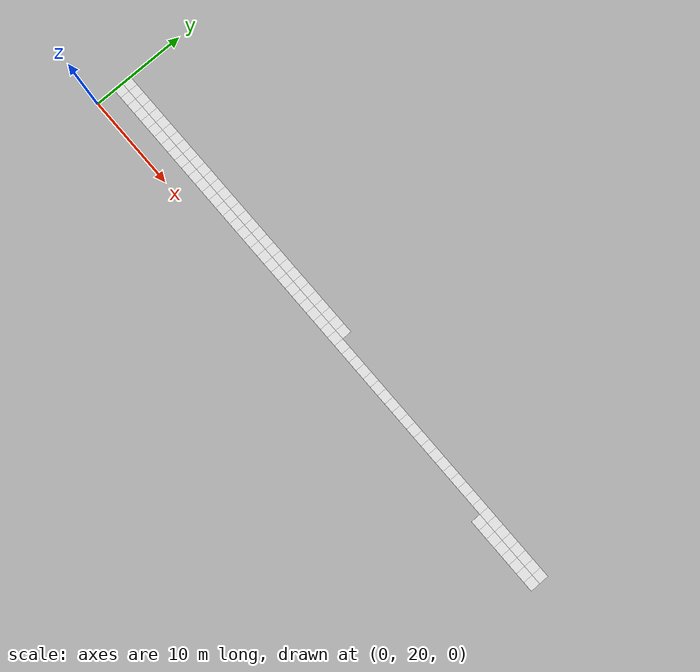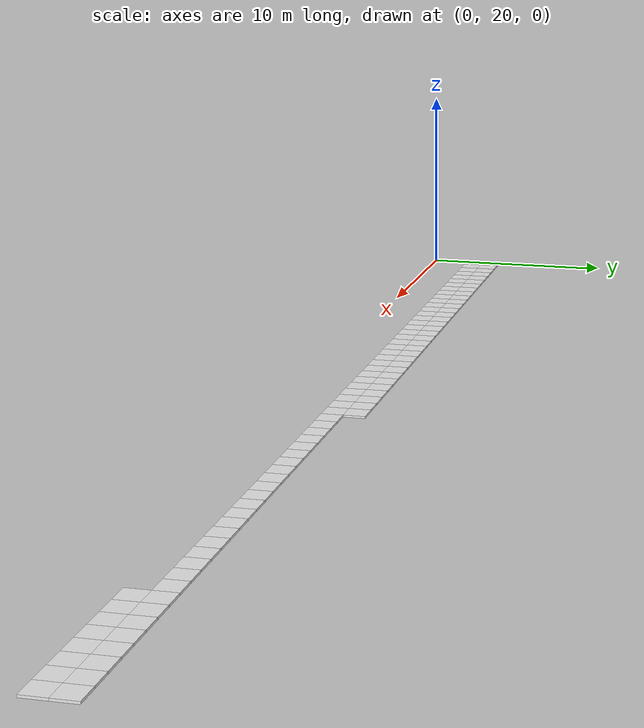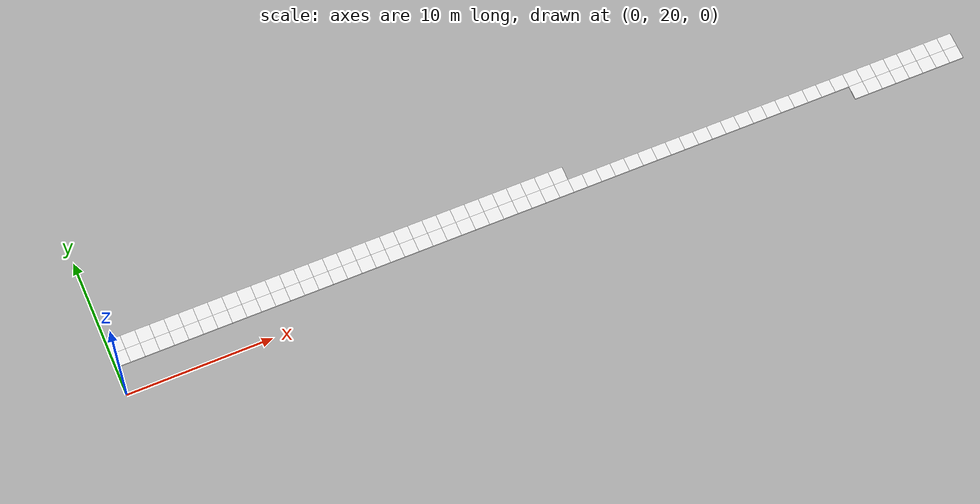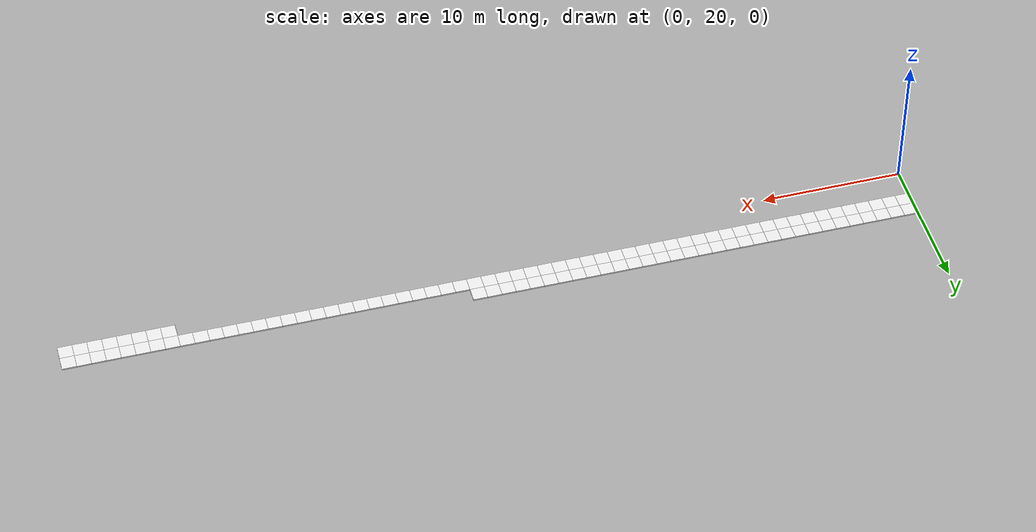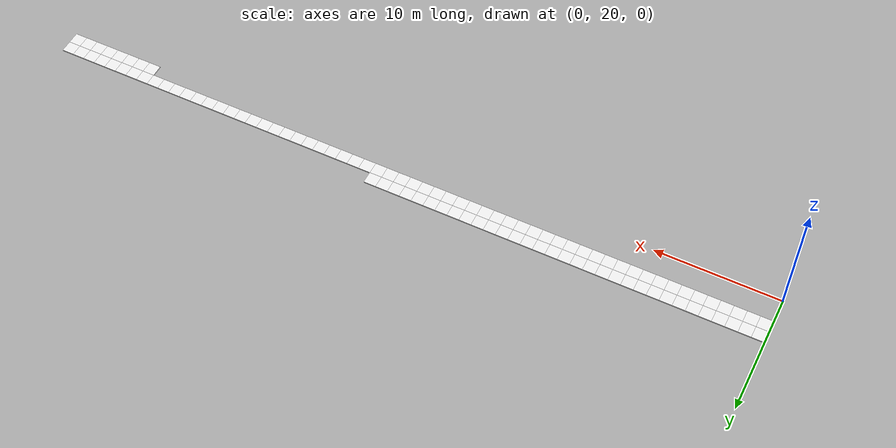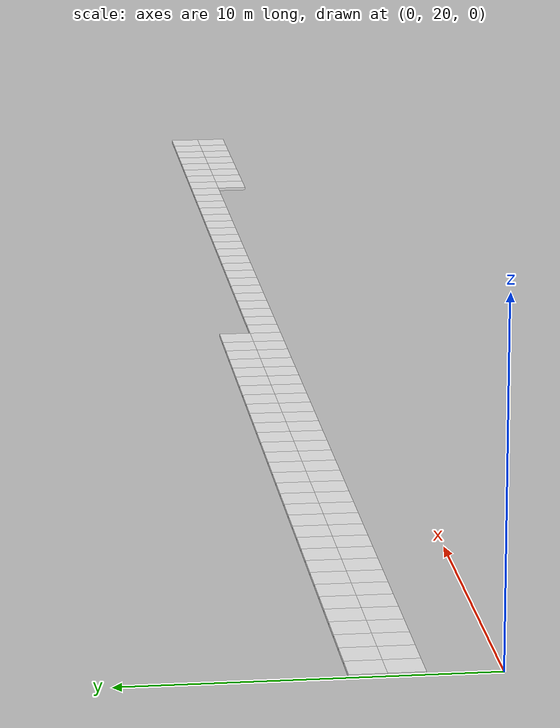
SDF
<sdf version="1.6">
 <world name="grid_world">
  <model name="cell_52_21">
   <static>true</static>
   <link name="link">
    <collision name="collision"><geometry><box><size>1 1 0.1</size></box></geometry></collision>
    <visual name="visual">
     <geometry><box><size>1 1 0.1</size></box></geometry>
     <material>
      <script><uri>file://media/materials/scripts/gazebo.material</uri><name>Gazebo/White</name></script>
     </material>
    </visual>
    <pose>52.5 21.5 0.05 0 0 0</pose>
   </link>
  </model>
  <model name="cell_53_21">
   <static>true</static>
   <link name="link">
    <collision name="collision"><geometry><box><size>1 1 0.1</size></box></geometry></collision>
    <visual name="visual">
     <geometry><box><size>1 1 0.1</size></box></geometry>
     <material>
      <script><uri>file://media/materials/scripts/gazebo.material</uri><name>Gazebo/White</name></script>
     </material>
    </visual>
    <pose>53.5 21.5 0.05 0 0 0</pose>
   </link>
  </model>
  <model name="cell_54_21">
   <static>true</static>
   <link name="link">
    <collision name="collision"><geometry><box><size>1 1 0.1</size></box></geometry></collision>
    <visual name="visual">
     <geometry><box><size>1 1 0.1</size></box></geometry>
     <material>
      <script><uri>file://media/materials/scripts/gazebo.material</uri><name>Gazebo/White</name></script>
     </material>
    </visual>
    <pose>54.5 21.5 0.05 0 0 0</pose>
   </link>
  </model>
  <model name="cell_55_21">
   <static>true</static>
   <link name="link">
    <collision name="collision"><geometry><box><size>1 1 0.1</size></box></geometry></collision>
    <visual name="visual">
     <geometry><box><size>1 1 0.1</size></box></geometry>
     <material>
      <script><uri>file://media/materials/scripts/gazebo.material</uri><name>Gazebo/White</name></script>
     </material>
    </visual>
    <pose>55.5 21.5 0.05 0 0 0</pose>
   </link>
  </model>
  <model name="cell_56_21">
   <static>true</static>
   <link name="link">
    <collision name="collision"><geometry><box><size>1 1 0.1</size></box></geometry></collision>
    <visual name="visual">
     <geometry><box><size>1 1 0.1</size></box></geometry>
     <material>
      <script><uri>file://media/materials/scripts/gazebo.material</uri><name>Gazebo/White</name></script>
     </material>
    </visual>
    <pose>56.5 21.5 0.05 0 0 0</pose>
   </link>
  </model>
  <model name="cell_57_21">
   <static>true</static>
   <link name="link">
    <collision name="collision"><geometry><box><size>1 1 0.1</size></box></geometry></collision>
    <visual name="visual">
     <geometry><box><size>1 1 0.1</size></box></geometry>
     <material>
      <script><uri>file://media/materials/scripts/gazebo.material</uri><name>Gazebo/White</name></script>
     </material>
    </visual>
    <pose>57.5 21.5 0.05 0 0 0</pose>
   </link>
  </model>
  <model name="cell_58_21">
   <static>true</static>
   <link name="link">
    <collision name="collision"><geometry><box><size>1 1 0.1</size></box></geometry></collision>
    <visual name="visual">
     <geometry><box><size>1 1 0.1</size></box></geometry>
     <material>
      <script><uri>file://media/materials/scripts/gazebo.material</uri><name>Gazebo/White</name></script>
     </material>
    </visual>
    <pose>58.5 21.5 0.05 0 0 0</pose>
   </link>
  </model>
  <model name="cell_59_21">
   <static>true</static>
   <link name="link">
    <collision name="collision"><geometry><box><size>1 1 0.1</size></box></geometry></collision>
    <visual name="visual">
     <geometry><box><size>1 1 0.1</size></box></geometry>
     <material>
      <script><uri>file://media/materials/scripts/gazebo.material</uri><name>Gazebo/White</name></script>
     </material>
    </visual>
    <pose>59.5 21.5 0.05 0 0 0</pose>
   </link>
  </model>
  <model name="cell_0_22">
   <static>true</static>
   <link name="link">
    <collision name="collision"><geometry><box><size>1 1 0.1</size></box></geometry></collision>
    <visual name="visual">
     <geometry><box><size>1 1 0.1</size></box></geometry>
     <material>
      <script><uri>file://media/materials/scripts/gazebo.material</uri><name>Gazebo/White</name></script>
     </material>
    </visual>
    <pose>0.5 22.5 0.05 0 0 0</pose>
   </link>
  </model>
  <model name="cell_1_22">
   <static>true</static>
   <link name="link">
    <collision name="collision"><geometry><box><size>1 1 0.1</size></box></geometry></collision>
    <visual name="visual">
     <geometry><box><size>1 1 0.1</size></box></geometry>
     <material>
      <script><uri>file://media/materials/scripts/gazebo.material</uri><name>Gazebo/White</name></script>
     </material>
    </visual>
    <pose>1.5 22.5 0.05 0 0 0</pose>
   </link>
  </model>
  <model name="cell_2_22">
   <static>true</static>
   <link name="link">
    <collision name="collision"><geometry><box><size>1 1 0.1</size></box></geometry></collision>
    <visual name="visual">
     <geometry><box><size>1 1 0.1</size></box></geometry>
     <material>
      <script><uri>file://media/materials/scripts/gazebo.material</uri><name>Gazebo/White</name></script>
     </material>
    </visual>
    <pose>2.5 22.5 0.05 0 0 0</pose>
   </link>
  </model>
  <model name="cell_3_22">
   <static>true</static>
   <link name="link">
    <collision name="collision"><geometry><box><size>1 1 0.1</size></box></geometry></collision>
    <visual name="visual">
     <geometry><box><size>1 1 0.1</size></box></geometry>
     <material>
      <script><uri>file://media/materials/scripts/gazebo.material</uri><name>Gazebo/White</name></script>
     </material>
    </visual>
    <pose>3.5 22.5 0.05 0 0 0</pose>
   </link>
  </model>
  <model name="cell_4_22">
   <static>true</static>
   <link name="link">
    <collision name="collision"><geometry><box><size>1 1 0.1</size></box></geometry></collision>
    <visual name="visual">
     <geometry><box><size>1 1 0.1</size></box></geometry>
     <material>
      <script><uri>file://media/materials/scripts/gazebo.material</uri><name>Gazebo/White</name></script>
     </material>
    </visual>
    <pose>4.5 22.5 0.05 0 0 0</pose>
   </link>
  </model>
  <model name="cell_5_22">
   <static>true</static>
   <link name="link">
    <collision name="collision"><geometry><box><size>1 1 0.1</size></box></geometry></collision>
    <visual name="visual">
     <geometry><box><size>1 1 0.1</size></box></geometry>
     <material>
      <script><uri>file://media/materials/scripts/gazebo.material</uri><name>Gazebo/White</name></script>
     </material>
    </visual>
    <pose>5.5 22.5 0.05 0 0 0</pose>
   </link>
  </model>
  <model name="cell_6_22">
   <static>true</static>
   <link name="link">
    <collision name="collision"><geometry><box><size>1 1 0.1</size></box></geometry></collision>
    <visual name="visual">
     <geometry><box><size>1 1 0.1</size></box></geometry>
     <material>
      <script><uri>file://media/materials/scripts/gazebo.material</uri><name>Gazebo/White</name></script>
     </material>
    </visual>
    <pose>6.5 22.5 0.05 0 0 0</pose>
   </link>
  </model>
  <model name="cell_7_22">
   <static>true</static>
   <link name="link">
    <collision name="collision"><geometry><box><size>1 1 0.1</size></box></geometry></collision>
    <visual name="visual">
     <geometry><box><size>1 1 0.1</size></box></geometry>
     <material>
      <script><uri>file://media/materials/scripts/gazebo.material</uri><name>Gazebo/White</name></script>
     </material>
    </visual>
    <pose>7.5 22.5 0.05 0 0 0</pose>
   </link>
  </model>
  <model name="cell_8_22">
   <static>true</static>
   <link name="link">
    <collision name="collision"><geometry><box><size>1 1 0.1</size></box></geometry></collision>
    <visual name="visual">
     <geometry><box><size>1 1 0.1</size></box></geometry>
     <material>
      <script><uri>file://media/materials/scripts/gazebo.material</uri><name>Gazebo/White</name></script>
     </material>
    </visual>
    <pose>8.5 22.5 0.05 0 0 0</pose>
   </link>
  </model>
  <model name="cell_9_22">
   <static>true</static>
   <link name="link">
    <collision name="collision"><geometry><box><size>1 1 0.1</size></box></geometry></collision>
    <visual name="visual">
     <geometry><box><size>1 1 0.1</size></box></geometry>
     <material>
      <script><uri>file://media/materials/scripts/gazebo.material</uri><name>Gazebo/White</name></script>
     </material>
    </visual>
    <pose>9.5 22.5 0.05 0 0 0</pose>
   </link>
  </model>
  <model name="cell_10_22">
   <static>true</static>
   <link name="link">
    <collision name="collision"><geometry><box><size>1 1 0.1</size></box></geometry></collision>
    <visual name="visual">
     <geometry><box><size>1 1 0.1</size></box></geometry>
     <material>
      <script><uri>file://media/materials/scripts/gazebo.material</uri><name>Gazebo/White</name></script>
     </material>
    </visual>
    <pose>10.5 22.5 0.05 0 0 0</pose>
   </link>
  </model>
  <model name="cell_11_22">
   <static>true</static>
   <link name="link">
    <collision name="collision"><geometry><box><size>1 1 0.1</size></box></geometry></collision>
    <visual name="visual">
     <geometry><box><size>1 1 0.1</size></box></geometry>
     <material>
      <script><uri>file://media/materials/scripts/gazebo.material</uri><name>Gazebo/White</name></script>
     </material>
    </visual>
    <pose>11.5 22.5 0.05 0 0 0</pose>
   </link>
  </model>
  <model name="cell_12_22">
   <static>true</static>
   <link name="link">
    <collision name="collision"><geometry><box><size>1 1 0.1</size></box></geometry></collision>
    <visual name="visual">
     <geometry><box><size>1 1 0.1</size></box></geometry>
     <material>
      <script><uri>file://media/materials/scripts/gazebo.material</uri><name>Gazebo/White</name></script>
     </material>
    </visual>
    <pose>12.5 22.5 0.05 0 0 0</pose>
   </link>
  </model>
  <model name="cell_13_22">
   <static>true</static>
   <link name="link">
    <collision name="collision"><geometry><box><size>1 1 0.1</size></box></geometry></collision>
    <visual name="visual">
     <geometry><box><size>1 1 0.1</size></box></geometry>
     <material>
      <script><uri>file://media/materials/scripts/gazebo.material</uri><name>Gazebo/White</name></script>
     </material>
    </visual>
    <pose>13.5 22.5 0.05 0 0 0</pose>
   </link>
  </model>
  <model name="cell_14_22">
   <static>true</static>
   <link name="link">
    <collision name="collision"><geometry><box><size>1 1 0.1</size></box></geometry></collision>
    <visual name="visual">
     <geometry><box><size>1 1 0.1</size></box></geometry>
     <material>
      <script><uri>file://media/materials/scripts/gazebo.material</uri><name>Gazebo/White</name></script>
     </material>
    </visual>
    <pose>14.5 22.5 0.05 0 0 0</pose>
   </link>
  </model>
  <model name="cell_15_22">
   <static>true</static>
   <link name="link">
    <collision name="collision"><geometry><box><size>1 1 0.1</size></box></geometry></collision>
    <visual name="visual">
     <geometry><box><size>1 1 0.1</size></box></geometry>
     <material>
      <script><uri>file://media/materials/scripts/gazebo.material</uri><name>Gazebo/White</name></script>
     </material>
    </visual>
    <pose>15.5 22.5 0.05 0 0 0</pose>
   </link>
  </model>
  <model name="cell_16_22">
   <static>true</static>
   <link name="link">
    <collision name="collision"><geometry><box><size>1 1 0.1</size></box></geometry></collision>
    <visual name="visual">
     <geometry><box><size>1 1 0.1</size></box></geometry>
     <material>
      <script><uri>file://media/materials/scripts/gazebo.material</uri><name>Gazebo/White</name></script>
     </material>
    </visual>
    <pose>16.5 22.5 0.05 0 0 0</pose>
   </link>
  </model>
  <model name="cell_17_22">
   <static>true</static>
   <link name="link">
    <collision name="collision"><geometry><box><size>1 1 0.1</size></box></geometry></collision>
    <visual name="visual">
     <geometry><box><size>1 1 0.1</size></box></geometry>
     <material>
      <script><uri>file://media/materials/scripts/gazebo.material</uri><name>Gazebo/White</name></script>
     </material>
    </visual>
    <pose>17.5 22.5 0.05 0 0 0</pose>
   </link>
  </model>
  <model name="cell_18_22">
   <static>true</static>
   <link name="link">
    <collision name="collision"><geometry><box><size>1 1 0.1</size></box></geometry></collision>
    <visual name="visual">
     <geometry><box><size>1 1 0.1</size></box></geometry>
     <material>
      <script><uri>file://media/materials/scripts/gazebo.material</uri><name>Gazebo/White</name></script>
     </material>
    </visual>
    <pose>18.5 22.5 0.05 0 0 0</pose>
   </link>
  </model>
  <model name="cell_19_22">
   <static>true</static>
   <link name="link">
    <collision name="collision"><geometry><box><size>1 1 0.1</size></box></geometry></collision>
    <visual name="visual">
     <geometry><box><size>1 1 0.1</size></box></geometry>
     <material>
      <script><uri>file://media/materials/scripts/gazebo.material</uri><name>Gazebo/White</name></script>
     </material>
    </visual>
    <pose>19.5 22.5 0.05 0 0 0</pose>
   </link>
  </model>
  <model name="cell_20_22">
   <static>true</static>
   <link name="link">
    <collision name="collision"><geometry><box><size>1 1 0.1</size></box></geometry></collision>
    <visual name="visual">
     <geometry><box><size>1 1 0.1</size></box></geometry>
     <material>
      <script><uri>file://media/materials/scripts/gazebo.material</uri><name>Gazebo/White</name></script>
     </material>
    </visual>
    <pose>20.5 22.5 0.05 0 0 0</pose>
   </link>
  </model>
  <model name="cell_21_22">
   <static>true</static>
   <link name="link">
    <collision name="collision"><geometry><box><size>1 1 0.1</size></box></geometry></collision>
    <visual name="visual">
     <geometry><box><size>1 1 0.1</size></box></geometry>
     <material>
      <script><uri>file://media/materials/scripts/gazebo.material</uri><name>Gazebo/White</name></script>
     </material>
    </visual>
    <pose>21.5 22.5 0.05 0 0 0</pose>
   </link>
  </model>
  <model name="cell_22_22">
   <static>true</static>
   <link name="link">
    <collision name="collision"><geometry><box><size>1 1 0.1</size></box></geometry></collision>
    <visual name="visual">
     <geometry><box><size>1 1 0.1</size></box></geometry>
     <material>
      <script><uri>file://media/materials/scripts/gazebo.material</uri><name>Gazebo/White</name></script>
     </material>
    </visual>
    <pose>22.5 22.5 0.05 0 0 0</pose>
   </link>
  </model>
  <model name="cell_23_22">
   <static>true</static>
   <link name="link">
    <collision name="collision"><geometry><box><size>1 1 0.1</size></box></geometry></collision>
    <visual name="visual">
     <geometry><box><size>1 1 0.1</size></box></geometry>
     <material>
      <script><uri>file://media/materials/scripts/gazebo.material</uri><name>Gazebo/White</name></script>
     </material>
    </visual>
    <pose>23.5 22.5 0.05 0 0 0</pose>
   </link>
  </model>
  <model name="cell_24_22">
   <static>true</static>
   <link name="link">
    <collision name="collision"><geometry><box><size>1 1 0.1</size></box></geometry></collision>
    <visual name="visual">
     <geometry><box><size>1 1 0.1</size></box></geometry>
     <material>
      <script><uri>file://media/materials/scripts/gazebo.material</uri><name>Gazebo/White</name></script>
     </material>
    </visual>
    <pose>24.5 22.5 0.05 0 0 0</pose>
   </link>
  </model>
  <model name="cell_25_22">
   <static>true</static>
   <link name="link">
    <collision name="collision"><geometry><box><size>1 1 0.1</size></box></geometry></collision>
    <visual name="visual">
     <geometry><box><size>1 1 0.1</size></box></geometry>
     <material>
      <script><uri>file://media/materials/scripts/gazebo.material</uri><name>Gazebo/White</name></script>
     </material>
    </visual>
    <pose>25.5 22.5 0.05 0 0 0</pose>
   </link>
  </model>
  <model name="cell_26_22">
   <static>true</static>
   <link name="link">
    <collision name="collision"><geometry><box><size>1 1 0.1</size></box></geometry></collision>
    <visual name="visual">
     <geometry><box><size>1 1 0.1</size></box></geometry>
     <material>
      <script><uri>file://media/materials/scripts/gazebo.material</uri><name>Gazebo/White</name></script>
     </material>
    </visual>
    <pose>26.5 22.5 0.05 0 0 0</pose>
   </link>
  </model>
  <model name="cell_27_22">
   <static>true</static>
   <link name="link">
    <collision name="collision"><geometry><box><size>1 1 0.1</size></box></geometry></collision>
    <visual name="visual">
     <geometry><box><size>1 1 0.1</size></box></geometry>
     <material>
      <script><uri>file://media/materials/scripts/gazebo.material</uri><name>Gazebo/White</name></script>
     </material>
    </visual>
    <pose>27.5 22.5 0.05 0 0 0</pose>
   </link>
  </model>
  <model name="cell_28_22">
   <static>true</static>
   <link name="link">
    <collision name="collision"><geometry><box><size>1 1 0.1</size></box></geometry></collision>
    <visual name="visual">
     <geometry><box><size>1 1 0.1</size></box></geometry>
     <material>
      <script><uri>file://media/materials/scripts/gazebo.material</uri><name>Gazebo/White</name></script>
     </material>
    </visual>
    <pose>28.5 22.5 0.05 0 0 0</pose>
   </link>
  </model>
  <model name="cell_29_22">
   <static>true</static>
   <link name="link">
    <collision name="collision"><geometry><box><size>1 1 0.1</size></box></geometry></collision>
    <visual name="visual">
     <geometry><box><size>1 1 0.1</size></box></geometry>
     <material>
      <script><uri>file://media/materials/scripts/gazebo.material</uri><name>Gazebo/White</name></script>
     </material>
    </visual>
    <pose>29.5 22.5 0.05 0 0 0</pose>
   </link>
  </model>
  <model name="cell_30_22">
   <static>true</static>
   <link name="link">
    <collision name="collision"><geometry><box><size>1 1 0.1</size></box></geometry></collision>
    <visual name="visual">
     <geometry><box><size>1 1 0.1</size></box></geometry>
     <material>
      <script><uri>file://media/materials/scripts/gazebo.material</uri><name>Gazebo/White</name></script>
     </material>
    </visual>
    <pose>30.5 22.5 0.05 0 0 0</pose>
   </link>
  </model>
  <model name="cell_31_22">
   <static>true</static>
   <link name="link">
    <collision name="collision"><geometry><box><size>1 1 0.1</size></box></geometry></collision>
    <visual name="visual">
     <geometry><box><size>1 1 0.1</size></box></geometry>
     <material>
      <script><uri>file://media/materials/scripts/gazebo.material</uri><name>Gazebo/White</name></script>
     </material>
    </visual>
    <pose>31.5 22.5 0.05 0 0 0</pose>
   </link>
  </model>
  <model name="cell_32_22">
   <static>true</static>
   <link name="link">
    <collision name="collision"><geometry><box><size>1 1 0.1</size></box></geometry></collision>
    <visual name="visual">
     <geometry><box><size>1 1 0.1</size></box></geometry>
     <material>
      <script><uri>file://media/materials/scripts/gazebo.material</uri><name>Gazebo/White</name></script>
     </material>
    </visual>
    <pose>32.5 22.5 0.05 0 0 0</pose>
   </link>
  </model>
  <model name="cell_33_22">
   <static>true</static>
   <link name="link">
    <collision name="collision"><geometry><box><size>1 1 0.1</size></box></geometry></collision>
    <visual name="visual">
     <geometry><box><size>1 1 0.1</size></box></geometry>
     <material>
      <script><uri>file://media/materials/scripts/gazebo.material</uri><name>Gazebo/White</name></script>
     </material>
    </visual>
    <pose>33.5 22.5 0.05 0 0 0</pose>
   </link>
  </model>
  <model name="cell_34_22">
   <static>true</static>
   <link name="link">
    <collision name="collision"><geometry><box><size>1 1 0.1</size></box></geometry></collision>
    <visual name="visual">
     <geometry><box><size>1 1 0.1</size></box></geometry>
     <material>
      <script><uri>file://media/materials/scripts/gazebo.material</uri><name>Gazebo/White</name></script>
     </material>
    </visual>
    <pose>34.5 22.5 0.05 0 0 0</pose>
   </link>
  </model>
  <model name="cell_35_22">
   <static>true</static>
   <link name="link">
    <collision name="collision"><geometry><box><size>1 1 0.1</size></box></geometry></collision>
    <visual name="visual">
     <geometry><box><size>1 1 0.1</size></box></geometry>
     <material>
      <script><uri>file://media/materials/scripts/gazebo.material</uri><name>Gazebo/White</name></script>
     </material>
    </visual>
    <pose>35.5 22.5 0.05 0 0 0</pose>
   </link>
  </model>
  <model name="cell_36_22">
   <static>true</static>
   <link name="link">
    <collision name="collision"><geometry><box><size>1 1 0.1</size></box></geometry></collision>
    <visual name="visual">
     <geometry><box><size>1 1 0.1</size></box></geometry>
     <material>
      <script><uri>file://media/materials/scripts/gazebo.material</uri><name>Gazebo/White</name></script>
     </material>
    </visual>
    <pose>36.5 22.5 0.05 0 0 0</pose>
   </link>
  </model>
  <model name="cell_37_22">
   <static>true</static>
   <link name="link">
    <collision name="collision"><geometry><box><size>1 1 0.1</size></box></geometry></collision>
    <visual name="visual">
     <geometry><box><size>1 1 0.1</size></box></geometry>
     <material>
      <script><uri>file://media/materials/scripts/gazebo.material</uri><name>Gazebo/White</name></script>
     </material>
    </visual>
    <pose>37.5 22.5 0.05 0 0 0</pose>
   </link>
  </model>
  <model name="cell_38_22">
   <static>true</static>
   <link name="link">
    <collision name="collision"><geometry><box><size>1 1 0.1</size></box></geometry></collision>
    <visual name="visual">
     <geometry><box><size>1 1 0.1</size></box></geometry>
     <material>
      <script><uri>file://media/materials/scripts/gazebo.material</uri><name>Gazebo/White</name></script>
     </material>
    </visual>
    <pose>38.5 22.5 0.05 0 0 0</pose>
   </link>
  </model>
  <model name="cell_39_22">
   <static>true</static>
   <link name="link">
    <collision name="collision"><geometry><box><size>1 1 0.1</size></box></geometry></collision>
    <visual name="visual">
     <geometry><box><size>1 1 0.1</size></box></geometry>
     <material>
      <script><uri>file://media/materials/scripts/gazebo.material</uri><name>Gazebo/White</name></script>
     </material>
    </visual>
    <pose>39.5 22.5 0.05 0 0 0</pose>
   </link>
  </model>
  <model name="cell_40_22">
   <static>true</static>
   <link name="link">
    <collision name="collision"><geometry><box><size>1 1 0.1</size></box></geometry></collision>
    <visual name="visual">
     <geometry><box><size>1 1 0.1</size></box></geometry>
     <material>
      <script><uri>file://media/materials/scripts/gazebo.material</uri><name>Gazebo/White</name></script>
     </material>
    </visual>
    <pose>40.5 22.5 0.05 0 0 0</pose>
   </link>
  </model>
  <model name="cell_41_22">
   <static>true</static>
   <link name="link">
    <collision name="collision"><geometry><box><size>1 1 0.1</size></box></geometry></collision>
    <visual name="visual">
     <geometry><box><size>1 1 0.1</size></box></geometry>
     <material>
      <script><uri>file://media/materials/scripts/gazebo.material</uri><name>Gazebo/White</name></script>
     </material>
    </visual>
    <pose>41.5 22.5 0.05 0 0 0</pose>
   </link>
  </model>
  <model name="cell_42_22">
   <static>true</static>
   <link name="link">
    <collision name="collision"><geometry><box><size>1 1 0.1</size></box></geometry></collision>
    <visual name="visual">
     <geometry><box><size>1 1 0.1</size></box></geometry>
     <material>
      <script><uri>file://media/materials/scripts/gazebo.material</uri><name>Gazebo/White</name></script>
     </material>
    </visual>
    <pose>42.5 22.5 0.05 0 0 0</pose>
   </link>
  </model>
  <model name="cell_43_22">
   <static>true</static>
   <link name="link">
    <collision name="collision"><geometry><box><size>1 1 0.1</size></box></geometry></collision>
    <visual name="visual">
     <geometry><box><size>1 1 0.1</size></box></geometry>
     <material>
      <script><uri>file://media/materials/scripts/gazebo.material</uri><name>Gazebo/White</name></script>
     </material>
    </visual>
    <pose>43.5 22.5 0.05 0 0 0</pose>
   </link>
  </model>
  <model name="cell_44_22">
   <static>true</static>
   <link name="link">
    <collision name="collision"><geometry><box><size>1 1 0.1</size></box></geometry></collision>
    <visual name="visual">
     <geometry><box><size>1 1 0.1</size></box></geometry>
     <material>
      <script><uri>file://media/materials/scripts/gazebo.material</uri><name>Gazebo/White</name></script>
     </material>
    </visual>
    <pose>44.5 22.5 0.05 0 0 0</pose>
   </link>
  </model>
  <model name="cell_45_22">
   <static>true</static>
   <link name="link">
    <collision name="collision"><geometry><box><size>1 1 0.1</size></box></geometry></collision>
    <visual name="visual">
     <geometry><box><size>1 1 0.1</size></box></geometry>
     <material>
      <script><uri>file://media/materials/scripts/gazebo.material</uri><name>Gazebo/White</name></script>
     </material>
    </visual>
    <pose>45.5 22.5 0.05 0 0 0</pose>
   </link>
  </model>
  <model name="cell_46_22">
   <static>true</static>
   <link name="link">
    <collision name="collision"><geometry><box><size>1 1 0.1</size></box></geometry></collision>
    <visual name="visual">
     <geometry><box><size>1 1 0.1</size></box></geometry>
     <material>
      <script><uri>file://media/materials/scripts/gazebo.material</uri><name>Gazebo/White</name></script>
     </material>
    </visual>
    <pose>46.5 22.5 0.05 0 0 0</pose>
   </link>
  </model>
  <model name="cell_47_22">
   <static>true</static>
   <link name="link">
    <collision name="collision"><geometry><box><size>1 1 0.1</size></box></geometry></collision>
    <visual name="visual">
     <geometry><box><size>1 1 0.1</size></box></geometry>
     <material>
      <script><uri>file://media/materials/scripts/gazebo.material</uri><name>Gazebo/White</name></script>
     </material>
    </visual>
    <pose>47.5 22.5 0.05 0 0 0</pose>
   </link>
  </model>
  <model name="cell_48_22">
   <static>true</static>
   <link name="link">
    <collision name="collision"><geometry><box><size>1 1 0.1</size></box></geometry></collision>
    <visual name="visual">
     <geometry><box><size>1 1 0.1</size></box></geometry>
     <material>
      <script><uri>file://media/materials/scripts/gazebo.material</uri><name>Gazebo/White</name></script>
     </material>
    </visual>
    <pose>48.5 22.5 0.05 0 0 0</pose>
   </link>
  </model>
  <model name="cell_49_22">
   <static>true</static>
   <link name="link">
    <collision name="collision"><geometry><box><size>1 1 0.1</size></box></geometry></collision>
    <visual name="visual">
     <geometry><box><size>1 1 0.1</size></box></geometry>
     <material>
      <script><uri>file://media/materials/scripts/gazebo.material</uri><name>Gazebo/White</name></script>
     </material>
    </visual>
    <pose>49.5 22.5 0.05 0 0 0</pose>
   </link>
  </model>
  <model name="cell_50_22">
   <static>true</static>
   <link name="link">
    <collision name="collision"><geometry><box><size>1 1 0.1</size></box></geometry></collision>
    <visual name="visual">
     <geometry><box><size>1 1 0.1</size></box></geometry>
     <material>
      <script><uri>file://media/materials/scripts/gazebo.material</uri><name>Gazebo/White</name></script>
     </material>
    </visual>
    <pose>50.5 22.5 0.05 0 0 0</pose>
   </link>
  </model>
  <model name="cell_51_22">
   <static>true</static>
   <link name="link">
    <collision name="collision"><geometry><box><size>1 1 0.1</size></box></geometry></collision>
    <visual name="visual">
     <geometry><box><size>1 1 0.1</size></box></geometry>
     <material>
      <script><uri>file://media/materials/scripts/gazebo.material</uri><name>Gazebo/White</name></script>
     </material>
    </visual>
    <pose>51.5 22.5 0.05 0 0 0</pose>
   </link>
  </model>
  <model name="cell_52_22">
   <static>true</static>
   <link name="link">
    <collision name="collision"><geometry><box><size>1 1 0.1</size></box></geometry></collision>
    <visual name="visual">
     <geometry><box><size>1 1 0.1</size></box></geometry>
     <material>
      <script><uri>file://media/materials/scripts/gazebo.material</uri><name>Gazebo/White</name></script>
     </material>
    </visual>
    <pose>52.5 22.5 0.05 0 0 0</pose>
   </link>
  </model>
  <model name="cell_53_22">
   <static>true</static>
   <link name="link">
    <collision name="collision"><geometry><box><size>1 1 0.1</size></box></geometry></collision>
    <visual name="visual">
     <geometry><box><size>1 1 0.1</size></box></geometry>
     <material>
      <script><uri>file://media/materials/scripts/gazebo.material</uri><name>Gazebo/White</name></script>
     </material>
    </visual>
    <pose>53.5 22.5 0.05 0 0 0</pose>
   </link>
  </model>
  <model name="cell_54_22">
   <static>true</static>
   <link name="link">
    <collision name="collision"><geometry><box><size>1 1 0.1</size></box></geometry></collision>
    <visual name="visual">
     <geometry><box><size>1 1 0.1</size></box></geometry>
     <material>
      <script><uri>file://media/materials/scripts/gazebo.material</uri><name>Gazebo/White</name></script>
     </material>
    </visual>
    <pose>54.5 22.5 0.05 0 0 0</pose>
   </link>
  </model>
  <model name="cell_55_22">
   <static>true</static>
   <link name="link">
    <collision name="collision"><geometry><box><size>1 1 0.1</size></box></geometry></collision>
    <visual name="visual">
     <geometry><box><size>1 1 0.1</size></box></geometry>
     <material>
      <script><uri>file://media/materials/scripts/gazebo.material</uri><name>Gazebo/White</name></script>
     </material>
    </visual>
    <pose>55.5 22.5 0.05 0 0 0</pose>
   </link>
  </model>
  <model name="cell_56_22">
   <static>true</static>
   <link name="link">
    <collision name="collision"><geometry><box><size>1 1 0.1</size></box></geometry></collision>
    <visual name="visual">
     <geometry><box><size>1 1 0.1</size></box></geometry>
     <material>
      <script><uri>file://media/materials/scripts/gazebo.material</uri><name>Gazebo/White</name></script>
     </material>
    </visual>
    <pose>56.5 22.5 0.05 0 0 0</pose>
   </link>
  </model>
  <model name="cell_57_22">
   <static>true</static>
   <link name="link">
    <collision name="collision"><geometry><box><size>1 1 0.1</size></box></geometry></collision>
    <visual name="visual">
     <geometry><box><size>1 1 0.1</size></box></geometry>
     <material>
      <script><uri>file://media/materials/scripts/gazebo.material</uri><name>Gazebo/White</name></script>
     </material>
    </visual>
    <pose>57.5 22.5 0.05 0 0 0</pose>
   </link>
  </model>
  <model name="cell_58_22">
   <static>true</static>
   <link name="link">
    <collision name="collision"><geometry><box><size>1 1 0.1</size></box></geometry></collision>
    <visual name="visual">
     <geometry><box><size>1 1 0.1</size></box></geometry>
     <material>
      <script><uri>file://media/materials/scripts/gazebo.material</uri><name>Gazebo/White</name></script>
     </material>
    </visual>
    <pose>58.5 22.5 0.05 0 0 0</pose>
   </link>
  </model>
  <model name="cell_59_22">
   <static>true</static>
   <link name="link">
    <collision name="collision"><geometry><box><size>1 1 0.1</size></box></geometry></collision>
    <visual name="visual">
     <geometry><box><size>1 1 0.1</size></box></geometry>
     <material>
      <script><uri>file://media/materials/scripts/gazebo.material</uri><name>Gazebo/White</name></script>
     </material>
    </visual>
    <pose>59.5 22.5 0.05 0 0 0</pose>
   </link>
  </model>
  <model name="cell_0_23">
   <static>true</static>
   <link name="link">
    <collision name="collision"><geometry><box><size>1 1 0.1</size></box></geometry></collision>
    <visual name="visual">
     <geometry><box><size>1 1 0.1</size></box></geometry>
     <material>
      <script><uri>file://media/materials/scripts/gazebo.material</uri><name>Gazebo/White</name></script>
     </material>
    </visual>
    <pose>0.5 23.5 0.05 0 0 0</pose>
   </link>
  </model>
  <model name="cell_1_23">
   <static>true</static>
   <link name="link">
    <collision name="collision"><geometry><box><size>1 1 0.1</size></box></geometry></collision>
    <visual name="visual">
     <geometry><box><size>1 1 0.1</size></box></geometry>
     <material>
      <script><uri>file://media/materials/scripts/gazebo.material</uri><name>Gazebo/White</name></script>
     </material>
    </visual>
    <pose>1.5 23.5 0.05 0 0 0</pose>
   </link>
  </model>
  <model name="cell_2_23">
   <static>true</static>
   <link name="link">
    <collision name="collision"><geometry><box><size>1 1 0.1</size></box></geometry></collision>
    <visual name="visual">
     <geometry><box><size>1 1 0.1</size></box></geometry>
     <material>
      <script><uri>file://media/materials/scripts/gazebo.material</uri><name>Gazebo/White</name></script>
     </material>
    </visual>
    <pose>2.5 23.5 0.05 0 0 0</pose>
   </link>
  </model>
  <model name="cell_3_23">
   <static>true</static>
   <link name="link">
    <collision name="collision"><geometry><box><size>1 1 0.1</size></box></geometry></collision>
    <visual name="visual">
     <geometry><box><size>1 1 0.1</size></box></geometry>
     <material>
      <script><uri>file://media/materials/scripts/gazebo.material</uri><name>Gazebo/White</name></script>
     </material>
    </visual>
    <pose>3.5 23.5 0.05 0 0 0</pose>
   </link>
  </model>
  <model name="cell_4_23">
   <static>true</static>
   <link name="link">
    <collision name="collision"><geometry><box><size>1 1 0.1</size></box></geometry></collision>
    <visual name="visual">
     <geometry><box><size>1 1 0.1</size></box></geometry>
     <material>
      <script><uri>file://media/materials/scripts/gazebo.material</uri><name>Gazebo/White</name></script>
     </material>
    </visual>
    <pose>4.5 23.5 0.05 0 0 0</pose>
   </link>
  </model>
  <model name="cell_5_23">
   <static>true</static>
   <link name="link">
    <collision name="collision"><geometry><box><size>1 1 0.1</size></box></geometry></collision>
    <visual name="visual">
     <geometry><box><size>1 1 0.1</size></box></geometry>
     <material>
      <script><uri>file://media/materials/scripts/gazebo.material</uri><name>Gazebo/White</name></script>
     </material>
    </visual>
    <pose>5.5 23.5 0.05 0 0 0</pose>
   </link>
  </model>
  <model name="cell_6_23">
   <static>true</static>
   <link name="link">
    <collision name="collision"><geometry><box><size>1 1 0.1</size></box></geometry></collision>
    <visual name="visual">
     <geometry><box><size>1 1 0.1</size></box></geometry>
     <material>
      <script><uri>file://media/materials/scripts/gazebo.material</uri><name>Gazebo/White</name></script>
     </material>
    </visual>
    <pose>6.5 23.5 0.05 0 0 0</pose>
   </link>
  </model>
  <model name="cell_7_23">
   <static>true</static>
   <link name="link">
    <collision name="collision"><geometry><box><size>1 1 0.1</size></box></geometry></collision>
    <visual name="visual">
     <geometry><box><size>1 1 0.1</size></box></geometry>
     <material>
      <script><uri>file://media/materials/scripts/gazebo.material</uri><name>Gazebo/White</name></script>
     </material>
    </visual>
    <pose>7.5 23.5 0.05 0 0 0</pose>
   </link>
  </model>
  <model name="cell_8_23">
   <static>true</static>
   <link name="link">
    <collision name="collision"><geometry><box><size>1 1 0.1</size></box></geometry></collision>
    <visual name="visual">
     <geometry><box><size>1 1 0.1</size></box></geometry>
     <material>
      <script><uri>file://media/materials/scripts/gazebo.material</uri><name>Gazebo/White</name></script>
     </material>
    </visual>
    <pose>8.5 23.5 0.05 0 0 0</pose>
   </link>
  </model>
  <model name="cell_9_23">
   <static>true</static>
   <link name="link">
    <collision name="collision"><geometry><box><size>1 1 0.1</size></box></geometry></collision>
    <visual name="visual">
     <geometry><box><size>1 1 0.1</size></box></geometry>
     <material>
      <script><uri>file://media/materials/scripts/gazebo.material</uri><name>Gazebo/White</name></script>
     </material>
    </visual>
    <pose>9.5 23.5 0.05 0 0 0</pose>
   </link>
  </model>
  <model name="cell_10_23">
   <static>true</static>
   <link name="link">
    <collision name="collision"><geometry><box><size>1 1 0.1</size></box></geometry></collision>
    <visual name="visual">
     <geometry><box><size>1 1 0.1</size></box></geometry>
     <material>
      <script><uri>file://media/materials/scripts/gazebo.material</uri><name>Gazebo/White</name></script>
     </material>
    </visual>
    <pose>10.5 23.5 0.05 0 0 0</pose>
   </link>
  </model>
  <model name="cell_11_23">
   <static>true</static>
   <link name="link">
    <collision name="collision"><geometry><box><size>1 1 0.1</size></box></geometry></collision>
    <visual name="visual">
     <geometry><box><size>1 1 0.1</size></box></geometry>
     <material>
      <script><uri>file://media/materials/scripts/gazebo.material</uri><name>Gazebo/White</name></script>
     </material>
    </visual>
    <pose>11.5 23.5 0.05 0 0 0</pose>
   </link>
  </model>
  <model name="cell_12_23">
   <static>true</static>
   <link name="link">
    <collision name="collision"><geometry><box><size>1 1 0.1</size></box></geometry></collision>
    <visual name="visual">
     <geometry><box><size>1 1 0.1</size></box></geometry>
     <material>
      <script><uri>file://media/materials/scripts/gazebo.material</uri><name>Gazebo/White</name></script>
     </material>
    </visual>
    <pose>12.5 23.5 0.05 0 0 0</pose>
   </link>
  </model>
  <model name="cell_13_23">
   <static>true</static>
   <link name="link">
    <collision name="collision"><geometry><box><size>1 1 0.1</size></box></geometry></collision>
    <visual name="visual">
     <geometry><box><size>1 1 0.1</size></box></geometry>
     <material>
      <script><uri>file://media/materials/scripts/gazebo.material</uri><name>Gazebo/White</name></script>
     </material>
    </visual>
    <pose>13.5 23.5 0.05 0 0 0</pose>
   </link>
  </model>
  <model name="cell_14_23">
   <static>true</static>
   <link name="link">
    <collision name="collision"><geometry><box><size>1 1 0.1</size></box></geometry></collision>
    <visual name="visual">
     <geometry><box><size>1 1 0.1</size></box></geometry>
     <material>
      <script><uri>file://media/materials/scripts/gazebo.material</uri><name>Gazebo/White</name></script>
     </material>
    </visual>
    <pose>14.5 23.5 0.05 0 0 0</pose>
   </link>
  </model>
  <model name="cell_15_23">
   <static>true</static>
   <link name="link">
    <collision name="collision"><geometry><box><size>1 1 0.1</size></box></geometry></collision>
    <visual name="visual">
     <geometry><box><size>1 1 0.1</size></box></geometry>
     <material>
      <script><uri>file://media/materials/scripts/gazebo.material</uri><name>Gazebo/White</name></script>
     </material>
    </visual>
    <pose>15.5 23.5 0.05 0 0 0</pose>
   </link>
  </model>
  <model name="cell_16_23">
   <static>true</static>
   <link name="link">
    <collision name="collision"><geometry><box><size>1 1 0.1</size></box></geometry></collision>
    <visual name="visual">
     <geometry><box><size>1 1 0.1</size></box></geometry>
     <material>
      <script><uri>file://media/materials/scripts/gazebo.material</uri><name>Gazebo/White</name></script>
     </material>
    </visual>
    <pose>16.5 23.5 0.05 0 0 0</pose>
   </link>
  </model>
  <model name="cell_17_23">
   <static>true</static>
   <link name="link">
    <collision name="collision"><geometry><box><size>1 1 0.1</size></box></geometry></collision>
    <visual name="visual">
     <geometry><box><size>1 1 0.1</size></box></geometry>
     <material>
      <script><uri>file://media/materials/scripts/gazebo.material</uri><name>Gazebo/White</name></script>
     </material>
    </visual>
    <pose>17.5 23.5 0.05 0 0 0</pose>
   </link>
  </model>
  <model name="cell_18_23">
   <static>true</static>
   <link name="link">
    <collision name="collision"><geometry><box><size>1 1 0.1</size></box></geometry></collision>
    <visual name="visual">
     <geometry><box><size>1 1 0.1</size></box></geometry>
     <material>
      <script><uri>file://media/materials/scripts/gazebo.material</uri><name>Gazebo/White</name></script>
     </material>
    </visual>
    <pose>18.5 23.5 0.05 0 0 0</pose>
   </link>
  </model>
  <model name="cell_19_23">
   <static>true</static>
   <link name="link">
    <collision name="collision"><geometry><box><size>1 1 0.1</size></box></geometry></collision>
    <visual name="visual">
     <geometry><box><size>1 1 0.1</size></box></geometry>
     <material>
      <script><uri>file://media/materials/scripts/gazebo.material</uri><name>Gazebo/White</name></script>
     </material>
    </visual>
    <pose>19.5 23.5 0.05 0 0 0</pose>
   </link>
  </model>
  <model name="cell_20_23">
   <static>true</static>
   <link name="link">
    <collision name="collision"><geometry><box><size>1 1 0.1</size></box></geometry></collision>
    <visual name="visual">
     <geometry><box><size>1 1 0.1</size></box></geometry>
     <material>
      <script><uri>file://media/materials/scripts/gazebo.material</uri><name>Gazebo/White</name></script>
     </material>
    </visual>
    <pose>20.5 23.5 0.05 0 0 0</pose>
   </link>
  </model>
  <model name="cell_21_23">
   <static>true</static>
   <link name="link">
    <collision name="collision"><geometry><box><size>1 1 0.1</size></box></geometry></collision>
    <visual name="visual">
     <geometry><box><size>1 1 0.1</size></box></geometry>
     <material>
      <script><uri>file://media/materials/scripts/gazebo.material</uri><name>Gazebo/White</name></script>
     </material>
    </visual>
    <pose>21.5 23.5 0.05 0 0 0</pose>
   </link>
  </model>
  <model name="cell_22_23">
   <static>true</static>
   <link name="link">
    <collision name="collision"><geometry><box><size>1 1 0.1</size></box></geometry></collision>
    <visual name="visual">
     <geometry><box><size>1 1 0.1</size></box></geometry>
     <material>
      <script><uri>file://media/materials/scripts/gazebo.material</uri><name>Gazebo/White</name></script>
     </material>
    </visual>
    <pose>22.5 23.5 0.05 0 0 0</pose>
   </link>
  </model>
  <model name="cell_23_23">
   <static>true</static>
   <link name="link">
    <collision name="collision"><geometry><box><size>1 1 0.1</size></box></geometry></collision>
    <visual name="visual">
     <geometry><box><size>1 1 0.1</size></box></geometry>
     <material>
      <script><uri>file://media/materials/scripts/gazebo.material</uri><name>Gazebo/White</name></script>
     </material>
    </visual>
    <pose>23.5 23.5 0.05 0 0 0</pose>
   </link>
  </model>
  <model name="cell_24_23">
   <static>true</static>
   <link name="link">
    <collision name="collision"><geometry><box><size>1 1 0.1</size></box></geometry></collision>
    <visual name="visual">
     <geometry><box><size>1 1 0.1</size></box></geometry>
     <material>
      <script><uri>file://media/materials/scripts/gazebo.material</uri><name>Gazebo/White</name></script>
     </material>
    </visual>
    <pose>24.5 23.5 0.05 0 0 0</pose>
   </link>
  </model>
  <model name="cell_25_23">
   <static>true</static>
   <link name="link">
    <collision name="collision"><geometry><box><size>1 1 0.1</size></box></geometry></collision>
    <visual name="visual">
     <geometry><box><size>1 1 0.1</size></box></geometry>
     <material>
      <script><uri>file://media/materials/scripts/gazebo.material</uri><name>Gazebo/White</name></script>
     </material>
    </visual>
    <pose>25.5 23.5 0.05 0 0 0</pose>
   </link>
  </model>
  <model name="cell_26_23">
   <static>true</static>
   <link name="link">
    <collision name="collision"><geometry><box><size>1 1 0.1</size></box></geometry></collision>
    <visual name="visual">
     <geometry><box><size>1 1 0.1</size></box></geometry>
     <material>
      <script><uri>file://media/materials/scripts/gazebo.material</uri><name>Gazebo/White</name></script>
     </material>
    </visual>
    <pose>26.5 23.5 0.05 0 0 0</pose>
   </link>
  </model>
  <model name="cell_27_23">
   <static>true</static>
   <link name="link">
    <collision name="collision"><geometry><box><size>1 1 0.1</size></box></geometry></collision>
    <visual name="visual">
     <geometry><box><size>1 1 0.1</size></box></geometry>
     <material>
      <script><uri>file://media/materials/scripts/gazebo.material</uri><name>Gazebo/White</name></script>
     </material>
    </visual>
    <pose>27.5 23.5 0.05 0 0 0</pose>
   </link>
  </model>
  <model name="cell_28_23">
   <static>true</static>
   <link name="link">
    <collision name="collision"><geometry><box><size>1 1 0.1</size></box></geometry></collision>
    <visual name="visual">
     <geometry><box><size>1 1 0.1</size></box></geometry>
     <material>
      <script><uri>file://media/materials/scripts/gazebo.material</uri><name>Gazebo/White</name></script>
     </material>
    </visual>
    <pose>28.5 23.5 0.05 0 0 0</pose>
   </link>
  </model>
  <model name="cell_29_23">
   <static>true</static>
   <link name="link">
    <collision name="collision"><geometry><box><size>1 1 0.1</size></box></geometry></collision>
    <visual name="visual">
     <geometry><box><size>1 1 0.1</size></box></geometry>
     <material>
      <script><uri>file://media/materials/scripts/gazebo.material</uri><name>Gazebo/White</name></script>
     </material>
    </visual>
    <pose>29.5 23.5 0.05 0 0 0</pose>
   </link>
  </model>
  <model name="cell_30_23">
   <static>true</static>
   <link name="link">
    <collision name="collision"><geometry><box><size>1 1 0.1</size></box></geometry></collision>
    <visual name="visual">
     <geometry><box><size>1 1 0.1</size></box></geometry>
     <material>
      <script><uri>file://media/materials/scripts/gazebo.material</uri><name>Gazebo/White</name></script>
     </material>
    </visual>
    <pose>30.5 23.5 0.05 0 0 0</pose>
   </link>
  </model>
  <model name="cell_31_23">
   <static>true</static>
   <link name="link">
    <collision name="collision"><geometry><box><size>1 1 0.1</size></box></geometry></collision>
    <visual name="visual">
     <geometry><box><size>1 1 0.1</size></box></geometry>
     <material>
      <script><uri>file://media/materials/scripts/gazebo.material</uri><name>Gazebo/White</name></script>
     </material>
    </visual>
    <pose>31.5 23.5 0.05 0 0 0</pose>
   </link>
  </model>
 </world>
</sdf>
